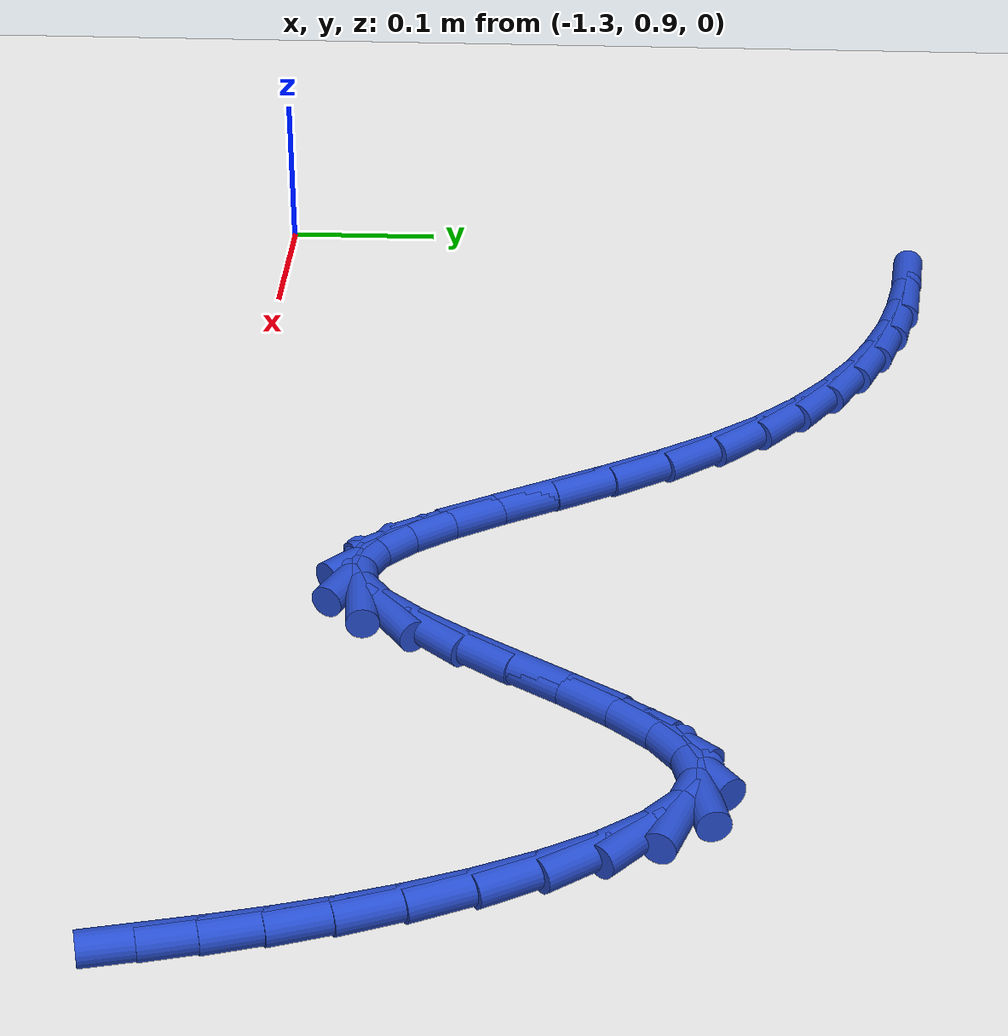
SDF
<sdf version="1.6">
 <world name="default">
  <model name="ground_plane">
   <static>1</static>
   <link name="link">
    <collision name="collision">
     <geometry><plane><normal>0 0 1</normal><size>100 100</size></plane></geometry>
     <surface><friction><ode><mu>100</mu><mu2>50</mu2></ode></friction></surface>
    </collision>
    <visual name="visual">
     <cast_shadows>0</cast_shadows>
     <geometry><plane><normal>0 0 1</normal><size>100 100</size></plane></geometry>
     <material>
      <script><uri>file://media/materials/scripts/gazebo.material</uri><name>Gazebo/WhiteGlow</name></script>
     </material>
    </visual>
   </link>
  </model>
  <model name="line">
   <link name="link_36">
    <pose>-0.5018575925775507 0.9219399759448187 0.01 0 1.57 -1.3396182417893663</pose>
    <collision name="collision">
     <geometry><cylinder><radius>0.01</radius><length>0.08</length></cylinder></geometry>
    </collision>
    <visual name="visual">
     <material>
      <script><name>Gazebo/Blue</name><uri>file://media/materials/scripts/gazebo.material</uri></script>
     </material>
     <geometry><cylinder><radius>0.01</radius><length>0.08</length></cylinder></geometry>
    </visual>
   </link>
   <link name="link_37">
    <pose>-0.5087379704464009 0.9511701206701247 0.01 0 1.57 -1.3152309533505668</pose>
    <collision name="collision">
     <geometry><cylinder><radius>0.01</radius><length>0.08</length></cylinder></geometry>
    </collision>
    <visual name="visual">
     <material>
      <script><name>Gazebo/Blue</name><uri>file://media/materials/scripts/gazebo.material</uri></script>
     </material>
     <geometry><cylinder><radius>0.01</radius><length>0.08</length></cylinder></geometry>
    </visual>
   </link>
   <link name="link_38">
    <pose>-0.5166691662472036 0.9815254357294112 0.01 0 1.57 -1.2798668388969523</pose>
    <collision name="collision">
     <geometry><cylinder><radius>0.01</radius><length>0.08</length></cylinder></geometry>
    </collision>
    <visual name="visual">
     <material>
      <script><name>Gazebo/Blue</name><uri>file://media/materials/scripts/gazebo.material</uri></script>
     </material>
     <geometry><cylinder><radius>0.01</radius><length>0.08</length></cylinder></geometry>
    </visual>
   </link>
   <link name="link_39">
    <pose>-0.5261689398690522 1.0132521227370723 0.01 0 1.57 -1.23637765767313</pose>
    <collision name="collision">
     <geometry><cylinder><radius>0.01</radius><length>0.08</length></cylinder></geometry>
    </collision>
    <visual name="visual">
     <material>
      <script><name>Gazebo/Blue</name><uri>file://media/materials/scripts/gazebo.material</uri></script>
     </material>
     <geometry><cylinder><radius>0.01</radius><length>0.08</length></cylinder></geometry>
    </visual>
   </link>
   <link name="link_40">
    <pose>-0.5377549773394633 1.0465961676912587 0.01 0 1.57 -1.186841311415604</pose>
    <collision name="collision">
     <geometry><cylinder><radius>0.01</radius><length>0.08</length></cylinder></geometry>
    </collision>
    <visual name="visual">
     <material>
      <script><name>Gazebo/Blue</name><uri>file://media/materials/scripts/gazebo.material</uri></script>
     </material>
     <geometry><cylinder><radius>0.01</radius><length>0.08</length></cylinder></geometry>
    </visual>
   </link>
   <link name="link_41">
    <pose>-0.5517553712232236 1.0812500965676453 0.01 0 1.57 -1.1264358655861058</pose>
    <collision name="collision">
     <geometry><cylinder><radius>0.01</radius><length>0.08</length></cylinder></geometry>
    </collision>
    <visual name="visual">
     <material>
      <script><name>Gazebo/Blue</name><uri>file://media/materials/scripts/gazebo.material</uri></script>
     </material>
     <geometry><cylinder><radius>0.01</radius><length>0.08</length></cylinder></geometry>
    </visual>
   </link>
   <link name="link_42">
    <pose>-0.5678985544465788 1.1151559127645638 0.01 0 1.57 -1.0437890577623303</pose>
    <collision name="collision">
     <geometry><cylinder><radius>0.01</radius><length>0.08</length></cylinder></geometry>
    </collision>
    <visual name="visual">
     <material>
      <script><name>Gazebo/Blue</name><uri>file://media/materials/scripts/gazebo.material</uri></script>
     </material>
     <geometry><cylinder><radius>0.01</radius><length>0.08</length></cylinder></geometry>
    </visual>
   </link>
   <link name="link_43">
    <pose>-0.5857946880035982 1.1459103610132044 0.01 0 1.57 -0.9182304434406863</pose>
    <collision name="collision">
     <geometry><cylinder><radius>0.01</radius><length>0.08</length></cylinder></geometry>
    </collision>
    <visual name="visual">
     <material>
      <script><name>Gazebo/Blue</name><uri>file://media/materials/scripts/gazebo.material</uri></script>
     </material>
     <geometry><cylinder><radius>0.01</radius><length>0.08</length></cylinder></geometry>
    </visual>
   </link>
   <link name="link_44">
    <pose>-0.6050539328883511 1.171110186044757 0.01 0 1.57 -0.7057640332321349</pose>
    <collision name="collision">
     <geometry><cylinder><radius>0.01</radius><length>0.08</length></cylinder></geometry>
    </collision>
    <visual name="visual">
     <material>
      <script><name>Gazebo/Blue</name><uri>file://media/materials/scripts/gazebo.material</uri></script>
     </material>
     <geometry><cylinder><radius>0.01</radius><length>0.08</length></cylinder></geometry>
    </visual>
   </link>
   <link name="link_45">
    <pose>-0.6252864500949067 1.1883521325904123 0.01 0 1.57 -0.3192478120041244</pose>
    <collision name="collision">
     <geometry><cylinder><radius>0.01</radius><length>0.08</length></cylinder></geometry>
    </collision>
    <visual name="visual">
     <material>
      <script><name>Gazebo/Blue</name><uri>file://media/materials/scripts/gazebo.material</uri></script>
     </material>
     <geometry><cylinder><radius>0.01</radius><length>0.08</length></cylinder></geometry>
    </visual>
   </link>
   <link name="link_46">
    <pose>-0.6461024006173343 1.1952329453813604 0.01 0 1.57 0.24886269692223045</pose>
    <collision name="collision">
     <geometry><cylinder><radius>0.01</radius><length>0.08</length></cylinder></geometry>
    </collision>
    <visual name="visual">
     <material>
      <script><name>Gazebo/Blue</name><uri>file://media/materials/scripts/gazebo.material</uri></script>
     </material>
     <geometry><cylinder><radius>0.01</radius><length>0.08</length></cylinder></geometry>
    </visual>
   </link>
   <link name="link_47">
    <pose>-0.6671425145218755 1.1898860040294852 0.01 0 1.57 0.6513745547622711</pose>
    <collision name="collision">
     <geometry><cylinder><radius>0.01</radius><length>0.08</length></cylinder></geometry>
    </collision>
    <visual name="visual">
     <material>
      <script><name>Gazebo/Blue</name><uri>file://media/materials/scripts/gazebo.material</uri></script>
     </material>
     <geometry><cylinder><radius>0.01</radius><length>0.08</length></cylinder></geometry>
    </visual>
   </link>
   <link name="link_48">
    <pose>-0.6882388091522095 1.1738027038798802 0.01 0 1.57 0.8512526315606326</pose>
    <collision name="collision">
     <geometry><cylinder><radius>0.01</radius><length>0.08</length></cylinder></geometry>
    </collision>
    <visual name="visual">
     <material>
      <script><name>Gazebo/Blue</name><uri>file://media/materials/scripts/gazebo.material</uri></script>
     </material>
     <geometry><cylinder><radius>0.01</radius><length>0.08</length></cylinder></geometry>
    </visual>
   </link>
   <link name="link_49">
    <pose>-0.7092971407823271 1.1497706701839614 0.01 0 1.57 0.9488223527337029</pose>
    <collision name="collision">
     <geometry><cylinder><radius>0.01</radius><length>0.08</length></cylinder></geometry>
    </collision>
    <visual name="visual">
     <material>
      <script><name>Gazebo/Blue</name><uri>file://media/materials/scripts/gazebo.material</uri></script>
     </material>
     <geometry><cylinder><radius>0.01</radius><length>0.08</length></cylinder></geometry>
    </visual>
   </link>
   <link name="link_50">
    <pose>-0.7302235233432267 1.1205802958351792 0.01 0 1.57 0.9902548783657289</pose>
    <collision name="collision">
     <geometry><cylinder><radius>0.01</radius><length>0.08</length></cylinder></geometry>
    </collision>
    <visual name="visual">
     <material>
      <script><name>Gazebo/Blue</name><uri>file://media/materials/scripts/gazebo.material</uri></script>
     </material>
     <geometry><cylinder><radius>0.01</radius><length>0.08</length></cylinder></geometry>
    </visual>
   </link>
   <link name="link_51">
    <pose>-0.7509239707659062 1.0890219737269826 0.01 0 1.57 0.9912170642530256</pose>
    <collision name="collision">
     <geometry><cylinder><radius>0.01</radius><length>0.08</length></cylinder></geometry>
    </collision>
    <visual name="visual">
     <material>
      <script><name>Gazebo/Blue</name><uri>file://media/materials/scripts/gazebo.material</uri></script>
     </material>
     <geometry><cylinder><radius>0.01</radius><length>0.08</length></cylinder></geometry>
    </visual>
   </link>
   <link name="link_52">
    <pose>-0.7713044969813639 1.0578860967528207 0.01 0 1.57 0.9500350199147481</pose>
    <collision name="collision">
     <geometry><cylinder><radius>0.01</radius><length>0.08</length></cylinder></geometry>
    </collision>
    <visual name="visual">
     <material>
      <script><name>Gazebo/Blue</name><uri>file://media/materials/scripts/gazebo.material</uri></script>
     </material>
     <geometry><cylinder><radius>0.01</radius><length>0.08</length></cylinder></geometry>
    </visual>
   </link>
   <link name="link_53">
    <pose>-0.7912711159205982 1.029963057806144 0.01 0 1.57 0.8448054525535259</pose>
    <collision name="collision">
     <geometry><cylinder><radius>0.01</radius><length>0.08</length></cylinder></geometry>
    </collision>
    <visual name="visual">
     <material>
      <script><name>Gazebo/Blue</name><uri>file://media/materials/scripts/gazebo.material</uri></script>
     </material>
     <geometry><cylinder><radius>0.01</radius><length>0.08</length></cylinder></geometry>
    </visual>
   </link>
   <link name="link_54">
    <pose>-0.8107298415146063 1.008043249780401 0.01 0 1.57 0.6081013437501183</pose>
    <collision name="collision">
     <geometry><cylinder><radius>0.01</radius><length>0.08</length></cylinder></geometry>
    </collision>
    <visual name="visual">
     <material>
      <script><name>Gazebo/Blue</name><uri>file://media/materials/scripts/gazebo.material</uri></script>
     </material>
     <geometry><cylinder><radius>0.01</radius><length>0.08</length></cylinder></geometry>
    </visual>
   </link>
   <link name="link_55">
    <pose>-0.8295866876943869 0.9949170655690416 0.01 0 1.57 0.11258326718776103</pose>
    <collision name="collision">
     <geometry><cylinder><radius>0.01</radius><length>0.08</length></cylinder></geometry>
    </collision>
    <visual name="visual">
     <material>
      <script><name>Gazebo/Blue</name><uri>file://media/materials/scripts/gazebo.material</uri></script>
     </material>
     <geometry><cylinder><radius>0.01</radius><length>0.08</length></cylinder></geometry>
    </visual>
   </link>
   <link name="link_56">
    <pose>-0.8477871687073082 0.9928592945196167 0.01 0 1.57 -0.43918239282443244</pose>
    <collision name="collision">
     <geometry><cylinder><radius>0.01</radius><length>0.08</length></cylinder></geometry>
    </collision>
    <visual name="visual">
     <material>
      <script><name>Gazebo/Blue</name><uri>file://media/materials/scripts/gazebo.material</uri></script>
     </material>
     <geometry><cylinder><radius>0.01</radius><length>0.08</length></cylinder></geometry>
    </visual>
   </link>
   <link name="link_57">
    <pose>-0.8655037552354329 1.0011822296442745 0.01 0 1.57 -0.7701243020527541</pose>
    <collision name="collision">
     <geometry><cylinder><radius>0.01</radius><length>0.08</length></cylinder></geometry>
    </collision>
    <visual name="visual">
     <material>
      <script><name>Gazebo/Blue</name><uri>file://media/materials/scripts/gazebo.material</uri></script>
     </material>
     <geometry><cylinder><radius>0.01</radius><length>0.08</length></cylinder></geometry>
    </visual>
   </link>
   <link name="link_58">
    <pose>-0.8829898204943766 1.0181421310671979 0.01 0 1.57 -0.9375657963978437</pose>
    <collision name="collision">
     <geometry><cylinder><radius>0.01</radius><length>0.08</length></cylinder></geometry>
    </collision>
    <visual name="visual">
     <material>
      <script><name>Gazebo/Blue</name><uri>file://media/materials/scripts/gazebo.material</uri></script>
     </material>
     <geometry><cylinder><radius>0.01</radius><length>0.08</length></cylinder></geometry>
    </visual>
   </link>
   <link name="link_59">
    <pose>-0.9004988370922988 1.0419939615268026 0.01 0 1.57 -1.020641632821619</pose>
    <collision name="collision">
     <geometry><cylinder><radius>0.01</radius><length>0.08</length></cylinder></geometry>
    </collision>
    <visual name="visual">
     <material>
      <script><name>Gazebo/Blue</name><uri>file://media/materials/scripts/gazebo.material</uri></script>
     </material>
     <geometry><cylinder><radius>0.01</radius><length>0.08</length></cylinder></geometry>
    </visual>
   </link>
   <link name="link_60">
    <pose>-0.9182842776373588 1.0709926837615042 0.01 0 1.57 -1.0562989901425432</pose>
    <collision name="collision">
     <geometry><cylinder><radius>0.01</radius><length>0.08</length></cylinder></geometry>
    </collision>
    <visual name="visual">
     <material>
      <script><name>Gazebo/Blue</name><uri>file://media/materials/scripts/gazebo.material</uri></script>
     </material>
     <geometry><cylinder><radius>0.01</radius><length>0.08</length></cylinder></geometry>
    </visual>
   </link>
   <link name="link_61">
    <pose>-0.9365996147377165 1.1033932605097192 0.01 0 1.57 -1.0597143951358174</pose>
    <collision name="collision">
     <geometry><cylinder><radius>0.01</radius><length>0.08</length></cylinder></geometry>
    </collision>
    <visual name="visual">
     <material>
      <script><name>Gazebo/Blue</name><uri>file://media/materials/scripts/gazebo.material</uri></script>
     </material>
     <geometry><cylinder><radius>0.01</radius><length>0.08</length></cylinder></geometry>
    </visual>
   </link>
   <link name="link_62">
    <pose>-0.9556983210015311 1.1374506545098626 0.01 0 1.57 -1.0357177892746015</pose>
    <collision name="collision">
     <geometry><cylinder><radius>0.01</radius><length>0.08</length></cylinder></geometry>
    </collision>
    <visual name="visual">
     <material>
      <script><name>Gazebo/Blue</name><uri>file://media/materials/scripts/gazebo.material</uri></script>
     </material>
     <geometry><cylinder><radius>0.01</radius><length>0.08</length></cylinder></geometry>
    </visual>
   </link>
   <link name="link_63">
    <pose>-0.9758338690369625 1.1714198285003508 0.01 0 1.57 -0.9827524060793504</pose>
    <collision name="collision">
     <geometry><cylinder><radius>0.01</radius><length>0.08</length></cylinder></geometry>
    </collision>
    <visual name="visual">
     <material>
      <script><name>Gazebo/Blue</name><uri>file://media/materials/scripts/gazebo.material</uri></script>
     </material>
     <geometry><cylinder><radius>0.01</radius><length>0.08</length></cylinder></geometry>
    </visual>
   </link>
   <link name="link_64">
    <pose>-0.9972597314521701 1.2035557452196002 0.01 0 1.57 -0.8961247400660588</pose>
    <collision name="collision">
     <geometry><cylinder><radius>0.01</radius><length>0.08</length></cylinder></geometry>
    </collision>
    <visual name="visual">
     <material>
      <script><name>Gazebo/Blue</name><uri>file://media/materials/scripts/gazebo.material</uri></script>
     </material>
     <geometry><cylinder><radius>0.01</radius><length>0.08</length></cylinder></geometry>
    </visual>
   </link>
   <link name="link_65">
    <pose>-1.020203664239343 1.232239739232126 0.01 0 1.57 -0.7920952872445507</pose>
    <collision name="collision">
     <geometry><cylinder><radius>0.01</radius><length>0.08</length></cylinder></geometry>
    </collision>
    <visual name="visual">
     <material>
      <script><name>Gazebo/Blue</name><uri>file://media/materials/scripts/gazebo.material</uri></script>
     </material>
     <geometry><cylinder><radius>0.01</radius><length>0.08</length></cylinder></geometry>
    </visual>
   </link>
   <link name="link_66">
    <pose>-1.0446556690468858 1.2570214734167857 0.01 0 1.57 -0.6842038319890776</pose>
    <collision name="collision">
     <geometry><cylinder><radius>0.01</radius><length>0.08</length></cylinder></geometry>
    </collision>
    <visual name="visual">
     <material>
      <script><name>Gazebo/Blue</name><uri>file://media/materials/scripts/gazebo.material</uri></script>
     </material>
     <geometry><cylinder><radius>0.01</radius><length>0.08</length></cylinder></geometry>
    </visual>
   </link>
   <link name="link_67">
    <pose>-1.0704771650979097 1.27808246656643 0.01 0 1.57 -0.5749373845861934</pose>
    <collision name="collision">
     <geometry><cylinder><radius>0.01</radius><length>0.08</length></cylinder></geometry>
    </collision>
    <visual name="visual">
     <material>
      <script><name>Gazebo/Blue</name><uri>file://media/materials/scripts/gazebo.material</uri></script>
     </material>
     <geometry><cylinder><radius>0.01</radius><length>0.08</length></cylinder></geometry>
    </visual>
   </link>
   <link name="link_68">
    <pose>-1.097528310537443 1.2956104344300075 0.01 0 1.57 -0.46683166220466393</pose>
    <collision name="collision">
     <geometry><cylinder><radius>0.01</radius><length>0.08</length></cylinder></geometry>
    </collision>
    <visual name="visual">
     <material>
      <script><name>Gazebo/Blue</name><uri>file://media/materials/scripts/gazebo.material</uri></script>
     </material>
     <geometry><cylinder><radius>0.01</radius><length>0.08</length></cylinder></geometry>
    </visual>
   </link>
   <link name="link_69">
    <pose>-1.125669263510513 1.3097930927564652 0.01 0 1.57 -0.36226106796924157</pose>
    <collision name="collision">
     <geometry><cylinder><radius>0.01</radius><length>0.08</length></cylinder></geometry>
    </collision>
    <visual name="visual">
     <material>
      <script><name>Gazebo/Blue</name><uri>file://media/materials/scripts/gazebo.material</uri></script>
     </material>
     <geometry><cylinder><radius>0.01</radius><length>0.08</length></cylinder></geometry>
    </visual>
   </link>
   <link name="link_70">
    <pose>-1.1547601821621483 1.3208181572947517 0.01 0 1.57 -0.2631477055316021</pose>
    <collision name="collision">
     <geometry><cylinder><radius>0.01</radius><length>0.08</length></cylinder></geometry>
    </collision>
    <visual name="visual">
     <material>
      <script><name>Gazebo/Blue</name><uri>file://media/materials/scripts/gazebo.material</uri></script>
     </material>
     <geometry><cylinder><radius>0.01</radius><length>0.08</length></cylinder></geometry>
    </visual>
   </link>
   <link name="link_71">
    <pose>-1.1846612246373776 1.3288733437938154 0.01 0 1.57 -0.17080211649465463</pose>
    <collision name="collision">
     <geometry><cylinder><radius>0.01</radius><length>0.08</length></cylinder></geometry>
    </collision>
    <visual name="visual">
     <material>
      <script><name>Gazebo/Blue</name><uri>file://media/materials/scripts/gazebo.material</uri></script>
     </material>
     <geometry><cylinder><radius>0.01</radius><length>0.08</length></cylinder></geometry>
    </visual>
   </link>
   <link name="link_72">
    <pose>-1.2152325490812286 1.3341463680026033 0.01 0 1.57 -0.08591102565120334</pose>
    <collision name="collision">
     <geometry><cylinder><radius>0.01</radius><length>0.08</length></cylinder></geometry>
    </collision>
    <visual name="visual">
     <material>
      <script><name>Gazebo/Blue</name><uri>file://media/materials/scripts/gazebo.material</uri></script>
     </material>
     <geometry><cylinder><radius>0.01</radius><length>0.08</length></cylinder></geometry>
    </visual>
   </link>
  </model>
 </world>
</sdf>
